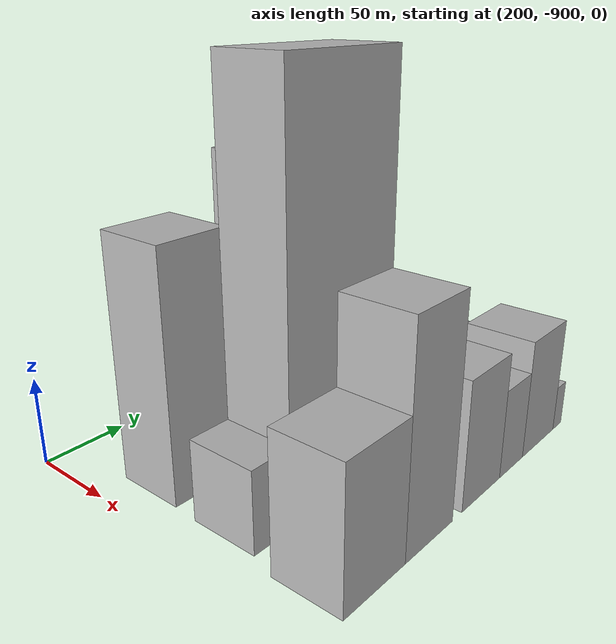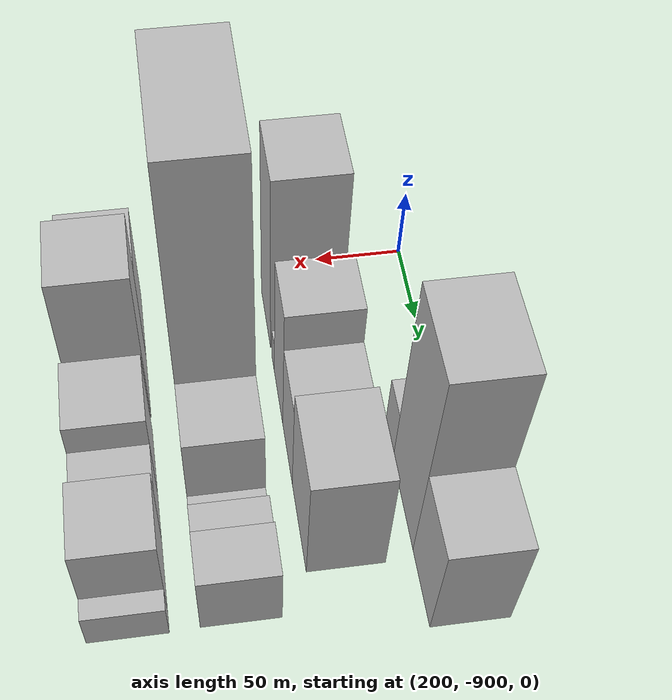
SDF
<sdf version="1.6">
 <world name="default">
  <model name="building_114">
   <static>1</static>
   <pose>210.0000 -771.2694 0 0.000000 0.000000 0.000000</pose>
   <link name="link">
    <pose>0 0 21.00 0 0 0</pose>
    <collision name="collision"><geometry><box><size>40.0000 21.9683 42.0000</size></box></geometry></collision>
    <visual name="visual">
     <cast_shadows>0</cast_shadows>
     <geometry><box><size>40.0000 21.9683 42.0000</size></box></geometry>
     <material>
      <script>
       <uri>model://HANNAS_wall/materials/scripts</uri>
       <uri>model://HANNAS_wall/materials/textures</uri>
       <name>vrc/HANNAS_wall</name>
      </script>
     </material>
    </visual>
   </link>
  </model>
  <model name="building_115">
   <static>1</static>
   <pose>210.0000 -733.6573 0 0.000000 0.000000 0.000000</pose>
   <link name="link">
    <pose>0 0 75.00 0 0 0</pose>
    <collision name="collision"><geometry><box><size>40.0000 53.2559 150.0000</size></box></geometry></collision>
    <visual name="visual">
     <cast_shadows>0</cast_shadows>
     <geometry><box><size>40.0000 53.2559 150.0000</size></box></geometry>
     <material>
      <script>
       <uri>model://HANNAS_wall/materials/scripts</uri>
       <uri>model://HANNAS_wall/materials/textures</uri>
       <name>vrc/HANNAS_wall</name>
      </script>
     </material>
    </visual>
   </link>
  </model>
  <model name="building_116">
   <static>1</static>
   <pose>210.0000 -686.3649 0 0.000000 0.000000 0.000000</pose>
   <link name="link">
    <pose>0 0 37.50 0 0 0</pose>
    <collision name="collision"><geometry><box><size>40.0000 41.3288 75.0000</size></box></geometry></collision>
    <visual name="visual">
     <cast_shadows>0</cast_shadows>
     <geometry><box><size>40.0000 41.3288 75.0000</size></box></geometry>
     <material>
      <script>
       <uri>model://HANNAS_wall/materials/scripts</uri>
       <uri>model://HANNAS_wall/materials/textures</uri>
       <name>vrc/HANNAS_wall</name>
      </script>
     </material>
    </visual>
   </link>
  </model>
  <model name="building_162">
   <static>1</static>
   <pose>265.0000 -860.4773 0 0.000000 0.000000 0.000000</pose>
   <link name="link">
    <pose>0 0 67.50 0 0 0</pose>
    <collision name="collision"><geometry><box><size>40.0000 41.0455 135.0000</size></box></geometry></collision>
    <visual name="visual">
     <cast_shadows>0</cast_shadows>
     <geometry><box><size>40.0000 41.0455 135.0000</size></box></geometry>
     <material>
      <script>
       <uri>model://HANNAS_wall/materials/scripts</uri>
       <uri>model://HANNAS_wall/materials/textures</uri>
       <name>vrc/HANNAS_wall</name>
      </script>
     </material>
    </visual>
   </link>
  </model>
  <model name="building_163">
   <static>1</static>
   <pose>265.0000 -828.6247 0 0.000000 0.000000 0.000000</pose>
   <link name="link">
    <pose>0 0 12.00 0 0 0</pose>
    <collision name="collision"><geometry><box><size>40.0000 10.6597 24.0000</size></box></geometry></collision>
    <visual name="visual">
     <cast_shadows>0</cast_shadows>
     <geometry><box><size>40.0000 10.6597 24.0000</size></box></geometry>
     <material>
      <script>
       <uri>model://HANNAS_wall/materials/scripts</uri>
       <uri>model://HANNAS_wall/materials/textures</uri>
       <name>vrc/HANNAS_wall</name>
      </script>
     </material>
    </visual>
   </link>
  </model>
  <model name="building_164">
   <static>1</static>
   <pose>265.0000 -806.0242 0 0.000000 0.000000 0.000000</pose>
   <link name="link">
    <pose>0 0 48.00 0 0 0</pose>
    <collision name="collision"><geometry><box><size>40.0000 34.5413 96.0000</size></box></geometry></collision>
    <visual name="visual">
     <cast_shadows>0</cast_shadows>
     <geometry><box><size>40.0000 34.5413 96.0000</size></box></geometry>
     <material>
      <script>
       <uri>model://HANNAS_wall/materials/scripts</uri>
       <uri>model://HANNAS_wall/materials/textures</uri>
       <name>vrc/HANNAS_wall</name>
      </script>
     </material>
    </visual>
   </link>
  </model>
  <model name="building_165">
   <static>1</static>
   <pose>265.0000 -770.3912 0 0.000000 0.000000 0.000000</pose>
   <link name="link">
    <pose>0 0 34.50 0 0 0</pose>
    <collision name="collision"><geometry><box><size>40.0000 36.7247 69.0000</size></box></geometry></collision>
    <visual name="visual">
     <cast_shadows>0</cast_shadows>
     <geometry><box><size>40.0000 36.7247 69.0000</size></box></geometry>
     <material>
      <script>
       <uri>model://HANNAS_wall/materials/scripts</uri>
       <uri>model://HANNAS_wall/materials/textures</uri>
       <name>vrc/HANNAS_wall</name>
      </script>
     </material>
    </visual>
   </link>
  </model>
  <model name="building_166">
   <static>1</static>
   <pose>265.0000 -726.9992 0 0.000000 0.000000 0.000000</pose>
   <link name="link">
    <pose>0 0 42.00 0 0 0</pose>
    <collision name="collision"><geometry><box><size>40.0000 50.0594 84.0000</size></box></geometry></collision>
    <visual name="visual">
     <cast_shadows>0</cast_shadows>
     <geometry><box><size>40.0000 50.0594 84.0000</size></box></geometry>
     <material>
      <script>
       <uri>model://HANNAS_wall/materials/scripts</uri>
       <uri>model://HANNAS_wall/materials/textures</uri>
       <name>vrc/HANNAS_wall</name>
      </script>
     </material>
    </visual>
   </link>
  </model>
  <model name="building_214">
   <static>1</static>
   <pose>320.0000 -869.7552 0 0.000000 0.000000 0.000000</pose>
   <link name="link">
    <pose>0 0 22.50 0 0 0</pose>
    <collision name="collision"><geometry><box><size>40.0000 24.4895 45.0000</size></box></geometry></collision>
    <visual name="visual">
     <cast_shadows>0</cast_shadows>
     <geometry><box><size>40.0000 24.4895 45.0000</size></box></geometry>
     <material>
      <script>
       <uri>model://HANNAS_wall/materials/scripts</uri>
       <uri>model://HANNAS_wall/materials/textures</uri>
       <name>vrc/HANNAS_wall</name>
      </script>
     </material>
    </visual>
   </link>
  </model>
  <model name="building_215">
   <static>1</static>
   <pose>320.0000 -818.7305 0 0.000000 0.000000 0.000000</pose>
   <link name="link">
    <pose>0 0 108.00 0 0 0</pose>
    <collision name="collision"><geometry><box><size>40.0000 77.5600 216.0000</size></box></geometry></collision>
    <visual name="visual">
     <cast_shadows>0</cast_shadows>
     <geometry><box><size>40.0000 77.5600 216.0000</size></box></geometry>
     <material>
      <script>
       <uri>model://HANNAS_wall/materials/scripts</uri>
       <uri>model://HANNAS_wall/materials/textures</uri>
       <name>vrc/HANNAS_wall</name>
      </script>
     </material>
    </visual>
   </link>
  </model>
  <model name="building_216">
   <static>1</static>
   <pose>320.0000 -761.7962 0 0.000000 0.000000 0.000000</pose>
   <link name="link">
    <pose>0 0 31.50 0 0 0</pose>
    <collision name="collision"><geometry><box><size>40.0000 36.3085 63.0000</size></box></geometry></collision>
    <visual name="visual">
     <cast_shadows>0</cast_shadows>
     <geometry><box><size>40.0000 36.3085 63.0000</size></box></geometry>
     <material>
      <script>
       <uri>model://HANNAS_wall/materials/scripts</uri>
       <uri>model://HANNAS_wall/materials/textures</uri>
       <name>vrc/HANNAS_wall</name>
      </script>
     </material>
    </visual>
   </link>
  </model>
  <model name="building_217">
   <static>1</static>
   <pose>320.0000 -740.1864 0 0.000000 0.000000 0.000000</pose>
   <link name="link">
    <pose>0 0 7.50 0 0 0</pose>
    <collision name="collision"><geometry><box><size>40.0000 6.9112 15.0000</size></box></geometry></collision>
    <visual name="visual">
     <cast_shadows>0</cast_shadows>
     <geometry><box><size>40.0000 6.9112 15.0000</size></box></geometry>
     <material>
      <script>
       <uri>model://HANNAS_wall/materials/scripts</uri>
       <uri>model://HANNAS_wall/materials/textures</uri>
       <name>vrc/HANNAS_wall</name>
      </script>
     </material>
    </visual>
   </link>
  </model>
  <model name="building_218">
   <static>1</static>
   <pose>320.0000 -717.4469 0 0.000000 0.000000 0.000000</pose>
   <link name="link">
    <pose>0 0 18.00 0 0 0</pose>
    <collision name="collision"><geometry><box><size>40.0000 20.5677 36.0000</size></box></geometry></collision>
    <visual name="visual">
     <cast_shadows>0</cast_shadows>
     <geometry><box><size>40.0000 20.5677 36.0000</size></box></geometry>
     <material>
      <script>
       <uri>model://HANNAS_wall/materials/scripts</uri>
       <uri>model://HANNAS_wall/materials/textures</uri>
       <name>vrc/HANNAS_wall</name>
      </script>
     </material>
    </visual>
   </link>
  </model>
  <model name="building_219">
   <static>1</static>
   <pose>320.0000 -693.5256 0 0.000000 0.000000 0.000000</pose>
   <link name="link">
    <pose>0 0 24.00 0 0 0</pose>
    <collision name="collision"><geometry><box><size>40.0000 27.2749 48.0000</size></box></geometry></collision>
    <visual name="visual">
     <cast_shadows>0</cast_shadows>
     <geometry><box><size>40.0000 27.2749 48.0000</size></box></geometry>
     <material>
      <script>
       <uri>model://HANNAS_wall/materials/scripts</uri>
       <uri>model://HANNAS_wall/materials/textures</uri>
       <name>vrc/HANNAS_wall</name>
      </script>
     </material>
    </visual>
   </link>
  </model>
  <model name="building_265">
   <static>1</static>
   <pose>375.0000 -864.7355 0 0.000000 0.000000 0.000000</pose>
   <link name="link">
    <pose>0 0 37.50 0 0 0</pose>
    <collision name="collision"><geometry><box><size>40.0000 44.5289 75.0000</size></box></geometry></collision>
    <visual name="visual">
     <cast_shadows>0</cast_shadows>
     <geometry><box><size>40.0000 44.5289 75.0000</size></box></geometry>
     <material>
      <script>
       <uri>model://HANNAS_wall/materials/scripts</uri>
       <uri>model://HANNAS_wall/materials/textures</uri>
       <name>vrc/HANNAS_wall</name>
      </script>
     </material>
    </visual>
   </link>
  </model>
  <model name="building_266">
   <static>1</static>
   <pose>375.0000 -822.4006 0 0.000000 0.000000 0.000000</pose>
   <link name="link">
    <pose>0 0 60.00 0 0 0</pose>
    <collision name="collision"><geometry><box><size>40.0000 40.1409 120.0000</size></box></geometry></collision>
    <visual name="visual">
     <cast_shadows>0</cast_shadows>
     <geometry><box><size>40.0000 40.1409 120.0000</size></box></geometry>
     <material>
      <script>
       <uri>model://HANNAS_wall/materials/scripts</uri>
       <uri>model://HANNAS_wall/materials/textures</uri>
       <name>vrc/HANNAS_wall</name>
      </script>
     </material>
    </visual>
   </link>
  </model>
  <model name="building_267">
   <static>1</static>
   <pose>375.0000 -774.1418 0 0.000000 0.000000 0.000000</pose>
   <link name="link">
    <pose>0 0 36.00 0 0 0</pose>
    <collision name="collision"><geometry><box><size>40.0000 38.3766 72.0000</size></box></geometry></collision>
    <visual name="visual">
     <cast_shadows>0</cast_shadows>
     <geometry><box><size>40.0000 38.3766 72.0000</size></box></geometry>
     <material>
      <script>
       <uri>model://HANNAS_wall/materials/scripts</uri>
       <uri>model://HANNAS_wall/materials/textures</uri>
       <name>vrc/HANNAS_wall</name>
      </script>
     </material>
    </visual>
   </link>
  </model>
  <model name="building_268">
   <static>1</static>
   <pose>375.0000 -741.8245 0 0.000000 0.000000 0.000000</pose>
   <link name="link">
    <pose>0 0 25.50 0 0 0</pose>
    <collision name="collision"><geometry><box><size>40.0000 26.2580 51.0000</size></box></geometry></collision>
    <visual name="visual">
     <cast_shadows>0</cast_shadows>
     <geometry><box><size>40.0000 26.2580 51.0000</size></box></geometry>
     <material>
      <script>
       <uri>model://HANNAS_wall/materials/scripts</uri>
       <uri>model://HANNAS_wall/materials/textures</uri>
       <name>vrc/HANNAS_wall</name>
      </script>
     </material>
    </visual>
   </link>
  </model>
  <model name="building_269">
   <static>1</static>
   <pose>375.0000 -709.2964 0 0.000000 0.000000 0.000000</pose>
   <link name="link">
    <pose>0 0 34.50 0 0 0</pose>
    <collision name="collision"><geometry><box><size>40.0000 38.7983 69.0000</size></box></geometry></collision>
    <visual name="visual">
     <cast_shadows>0</cast_shadows>
     <geometry><box><size>40.0000 38.7983 69.0000</size></box></geometry>
     <material>
      <script>
       <uri>model://HANNAS_wall/materials/scripts</uri>
       <uri>model://HANNAS_wall/materials/textures</uri>
       <name>vrc/HANNAS_wall</name>
      </script>
     </material>
    </visual>
   </link>
  </model>
  <model name="building_270">
   <static>1</static>
   <pose>375.0000 -684.4733 0 0.000000 0.000000 0.000000</pose>
   <link name="link">
    <pose>0 0 13.50 0 0 0</pose>
    <collision name="collision"><geometry><box><size>40.0000 10.8477 27.0000</size></box></geometry></collision>
    <visual name="visual">
     <cast_shadows>0</cast_shadows>
     <geometry><box><size>40.0000 10.8477 27.0000</size></box></geometry>
     <material>
      <script>
       <uri>model://HANNAS_wall/materials/scripts</uri>
       <uri>model://HANNAS_wall/materials/textures</uri>
       <name>vrc/HANNAS_wall</name>
      </script>
     </material>
    </visual>
   </link>
  </model>
 </world>
</sdf>
